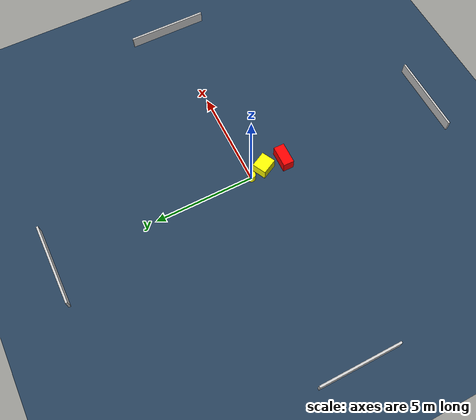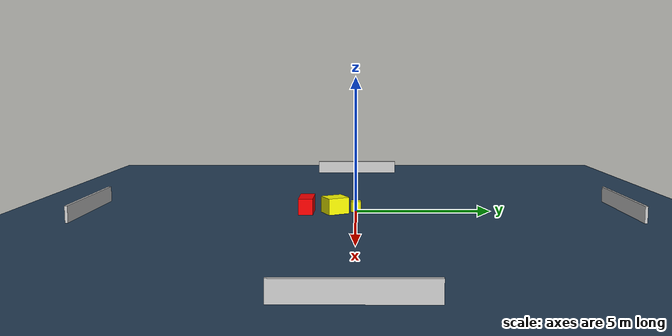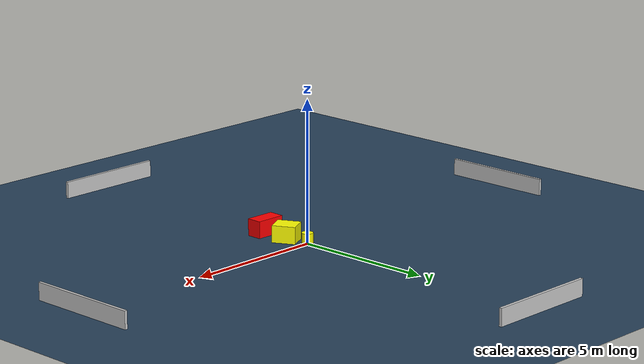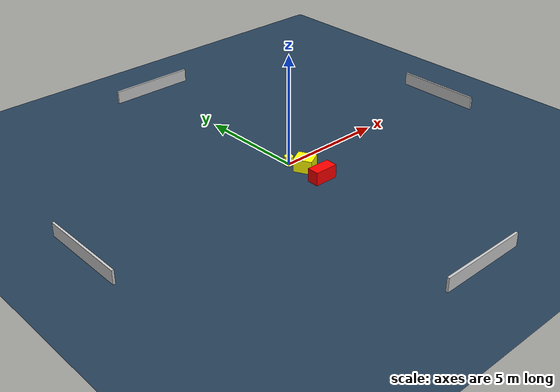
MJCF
<?xml version="1.0" ?>
<mujoco model="generated_environment">
  <option timestep="0.01" integrator="RK4" cone="elliptic"/>
  <default>
    <geom density="1"/>
  </default>
  <asset>
    <texture builtin="gradient" height="3072" name="skybox" rgb1="0.3 0.5 0.7" rgb2="0 0 0" type="skybox" width="512"/>
    <texture builtin="checker" height="300" name="groundplane" rgb1="0.2 0.3 0.4" rgb2="0.1 0.2 0.3" type="2d" width="300"/>
    <material name="groundplane" reflectance="0.2" texrepeat="5 5" texture="groundplane"/>
  </asset>
  <worldbody>
    <light dir="0 0 -1" directional="true" pos="0 0 1.5"/>
    <geom condim="3" friction="0.5 0.005 0.001" material="groundplane" name="floor" pos="0 0 0" size="0 0 0.05" type="plane"/>
    <body name="walls">
      <geom name="wall_1" condim="4" pos="-10.0 0.0 0.3" rgba="0.800000011920929 0.800000011920929 0.800000011920929 1.0" size="0.05 2.0 0.3" type="box"/>
      <geom name="wall_2" condim="4" pos="10.0 0.0 0.3" rgba="0.800000011920929 0.800000011920929 0.800000011920929 1.0" size="0.05 2.0 0.3" type="box"/>
      <geom name="wall_3" condim="4" pos="0.0 -10.0 0.3" rgba="0.800000011920929 0.800000011920929 0.800000011920929 1.0" size="2.0 0.05 0.3" type="box"/>
      <geom name="wall_4" condim="4" pos="0.0 10.0 0.3" rgba="0.800000011920929 0.800000011920929 0.800000011920929 1.0" size="2.0 0.05 0.3" type="box"/>
    </body>
    <body name="robot">
      <joint name="joint_x" type="slide" pos="0 0 0" axis="1 0 0"/>
      <joint name="joint_y" type="slide" pos="0 0 0" axis="0 1 0"/>
      <geom name="robot" type="cylinder" pos="0.0 0.0 0.2" size="0.2 0.2 0.0" mass="5.0" friction="1.0 0.005 0.0001" condim="4" rgba="1.0 1.0 0.0 1.0"/>
    </body>
    <body name="obstacle_1_movable">
      <geom name="obstacle_1_movable" condim="4" pos="0.21225177191951008 -0.7740161748729946 0.3" euler="0 0 297.1213246778174" friction="0.0 0.005 0.001" rgba="1.0 1.0 0.0 1.0" size="0.4098210406131122 0.3589174421887424 0.3" type="box" mass="0.1"/>
      <joint type="free"/>
    </body>
    <body name="obstacle_2_static">
      <geom name="obstacle_2_static" condim="4" pos="0.1649687985478361 -1.8338212931421234 0.3" euler="0 0 359.0262185716539" friction="0.0 0.005 0.001" rgba="1.0 0.0 0.0 1.0" size="0.5381438503873124 0.27071735634667776 0.3" type="box"/>
    </body>
  </worldbody>
  <actuator>
    <motor name="actuator_x" joint="joint_x" gear="1" ctrlrange="-1 1"/>
    <motor name="actuator_y" joint="joint_y" gear="1" ctrlrange="-1 1"/>
  </actuator>
</mujoco>
